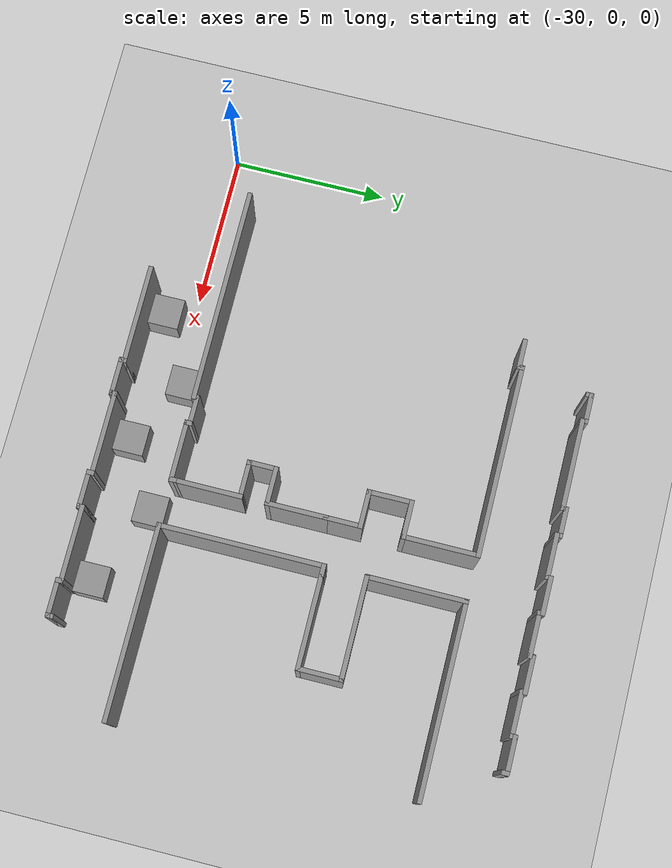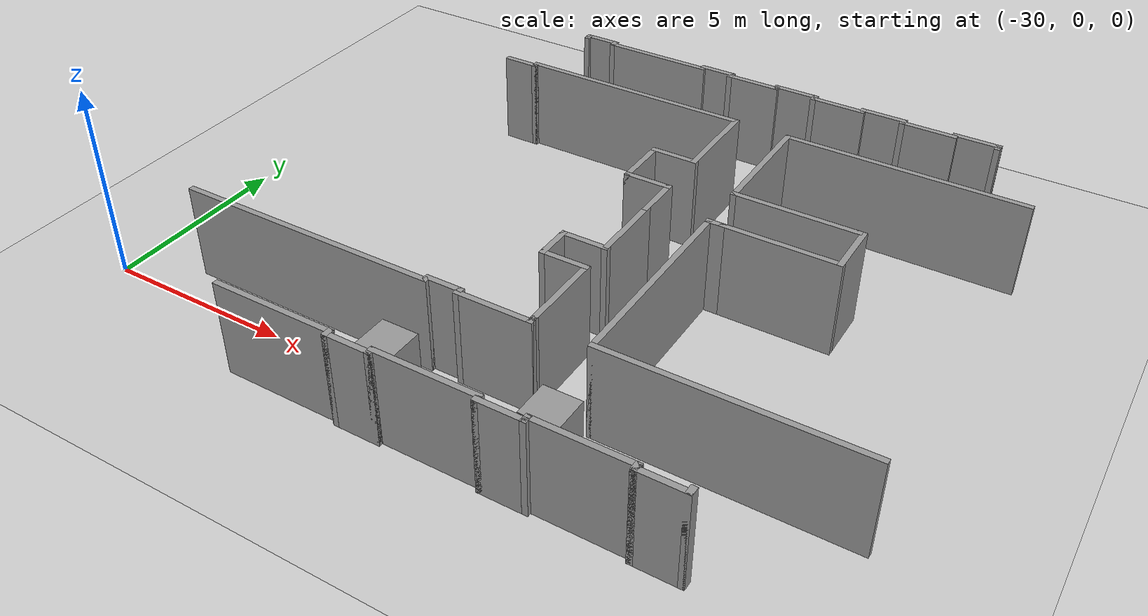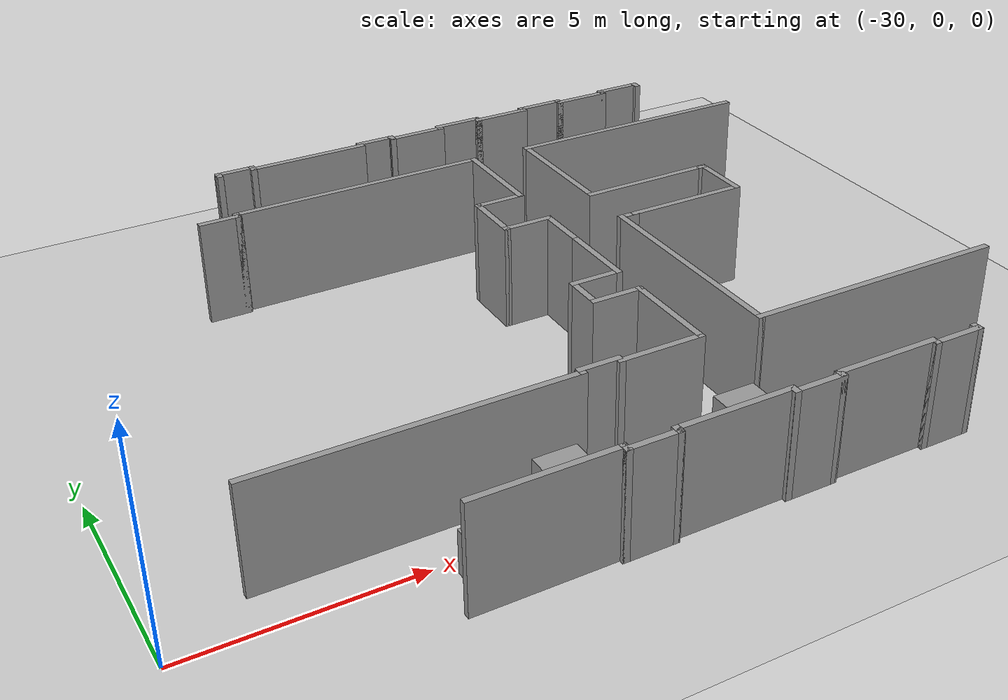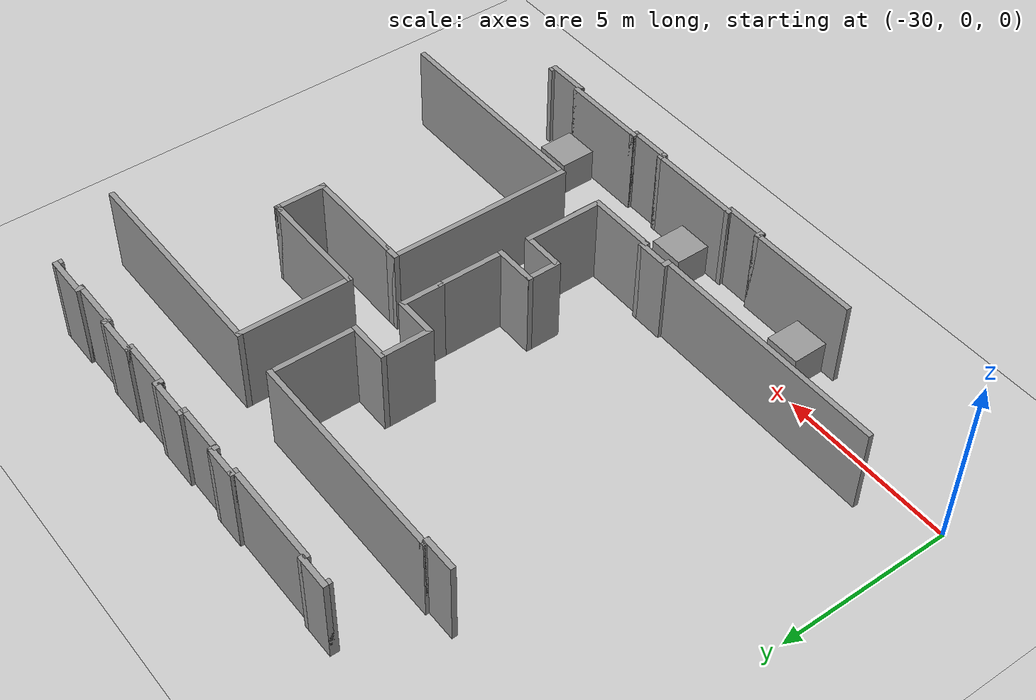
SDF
<sdf version="1.6">
 <world name="default">
  <model name="ground_plane">
   <static>1</static>
   <link name="link">
    <collision name="collision">
     <geometry><plane><normal>0 0 1</normal><size>100 100</size></plane></geometry>
     <surface><friction><ode><mu>100</mu><mu2>50</mu2></ode></friction></surface>
    </collision>
    <visual name="visual">
     <cast_shadows>0</cast_shadows>
     <geometry><plane><normal>0 0 1</normal><size>100 100</size></plane></geometry>
     <material>
      <script><uri>file://media/materials/scripts/gazebo.material</uri><name>Gazebo/Grey</name></script>
     </material>
    </visual>
   </link>
  </model>
  <model name="hallway">
   <pose>-18.4373 5.74333 0 0 -0 0</pose>
   <link name="Wall_100">
    <collision name="Wall_100_Collision">
     <geometry><box><size>3 0.15 2.5</size></box></geometry>
     <pose>0 0 1.25 0 -0 0</pose>
    </collision>
    <visual name="Wall_100_Visual">
     <pose>0 0 1.25 0 -0 0</pose>
     <geometry><box><size>3 0.15 2.5</size></box></geometry>
     <material>
      <script><uri>file://media/materials/scripts/gazebo.material</uri><name>Gazebo/Grey</name></script>
      <ambient>1 1 1 1</ambient>
     </material>
    </visual>
    <pose>-3.6 7.15 0 0 -0 3.14159</pose>
   </link>
   <link name="Wall_101">
    <collision name="Wall_101_Collision">
     <geometry><box><size>0.25 0.15 2.5</size></box></geometry>
     <pose>0 0 1.25 0 -0 0</pose>
    </collision>
    <visual name="Wall_101_Visual">
     <pose>0 0 1.25 0 -0 0</pose>
     <geometry><box><size>0.25 0.15 2.5</size></box></geometry>
     <material>
      <script><uri>file://media/materials/scripts/gazebo.material</uri><name>Gazebo/Grey</name></script>
      <ambient>1 1 1 1</ambient>
     </material>
    </visual>
    <pose>-5.025 7.2 0 0 -0 1.5708</pose>
   </link>
   <link name="Wall_102">
    <collision name="Wall_102_Collision">
     <geometry><box><size>1 0.15 2.5</size></box></geometry>
     <pose>0 0 1.25 0 -0 0</pose>
    </collision>
    <visual name="Wall_102_Visual">
     <pose>0 0 1.25 0 -0 0</pose>
     <geometry><box><size>1 0.15 2.5</size></box></geometry>
     <material>
      <script><uri>file://media/materials/scripts/gazebo.material</uri><name>Gazebo/Grey</name></script>
      <ambient>1 1 1 1</ambient>
     </material>
    </visual>
    <pose>-5.45 7.25 0 0 -0 3.14159</pose>
   </link>
   <link name="Wall_103">
    <collision name="Wall_103_Collision">
     <geometry><box><size>0.25 0.15 2.5</size></box></geometry>
     <pose>0 0 1.25 0 -0 0</pose>
    </collision>
    <visual name="Wall_103_Visual">
     <pose>0 0 1.25 0 -0 0</pose>
     <geometry><box><size>0.25 0.15 2.5</size></box></geometry>
     <material>
      <script><uri>file://media/materials/scripts/gazebo.material</uri><name>Gazebo/Grey</name></script>
      <ambient>1 1 1 1</ambient>
     </material>
    </visual>
    <pose>-5.875 7.2 0 0 0 -1.5708</pose>
   </link>
   <link name="Wall_137">
    <collision name="Wall_137_Collision">
     <geometry><box><size>1 0.15 2.5</size></box></geometry>
     <pose>0 0 1.25 0 -0 0</pose>
    </collision>
    <visual name="Wall_137_Visual">
     <pose>0 0 1.25 0 -0 0</pose>
     <geometry><box><size>1 0.15 2.5</size></box></geometry>
     <material>
      <script><uri>file://media/materials/scripts/gazebo.material</uri><name>Gazebo/Grey</name></script>
      <ambient>1 1 1 1</ambient>
     </material>
    </visual>
    <pose>-6.65 4.86522 0 0 -0 0</pose>
   </link>
   <link name="Wall_138">
    <collision name="Wall_138_Collision">
     <geometry><box><size>0.25 0.15 2.5</size></box></geometry>
     <pose>0 0 1.25 0 -0 0</pose>
    </collision>
    <visual name="Wall_138_Visual">
     <pose>0 0 1.25 0 -0 0</pose>
     <geometry><box><size>0.25 0.15 2.5</size></box></geometry>
     <material>
      <script><uri>file://media/materials/scripts/gazebo.material</uri><name>Gazebo/Grey</name></script>
      <ambient>1 1 1 1</ambient>
     </material>
    </visual>
    <pose>-6.225 4.91522 0 0 -0 1.5708</pose>
   </link>
   <link name="Wall_139">
    <collision name="Wall_139_Collision">
     <geometry><box><size>6.25 0.15 2.5</size></box></geometry>
     <pose>0 0 1.25 0 -0 0</pose>
    </collision>
    <visual name="Wall_139_Visual">
     <pose>0 0 1.25 0 -0 0</pose>
     <geometry><box><size>6.25 0.15 2.5</size></box></geometry>
     <material>
      <script><uri>file://media/materials/scripts/gazebo.material</uri><name>Gazebo/Grey</name></script>
      <ambient>1 1 1 1</ambient>
     </material>
    </visual>
    <pose>-3.175 4.96522 0 0 -0 0</pose>
   </link>
   <link name="Wall_140">
    <collision name="Wall_140_Collision">
     <geometry><box><size>2.5 0.15 2.5</size></box></geometry>
     <pose>0 0 1.25 0 -0 0</pose>
    </collision>
    <visual name="Wall_140_Visual">
     <pose>0 0 1.25 0 -0 0</pose>
     <geometry><box><size>2.5 0.15 2.5</size></box></geometry>
     <material>
      <script><uri>file://media/materials/scripts/gazebo.material</uri><name>Gazebo/Grey</name></script>
      <ambient>1 1 1 1</ambient>
     </material>
    </visual>
    <pose>-0.125 3.79022 0 0 0 -1.5708</pose>
   </link>
   <link name="Wall_141">
    <collision name="Wall_141_Collision">
     <geometry><box><size>1.25 0.15 2.5</size></box></geometry>
     <pose>0 0 1.25 0 -0 0</pose>
    </collision>
    <visual name="Wall_141_Visual">
     <pose>0 0 1.25 0 -0 0</pose>
     <geometry><box><size>1.25 0.15 2.5</size></box></geometry>
     <material>
      <script><uri>file://media/materials/scripts/gazebo.material</uri><name>Gazebo/Grey</name></script>
      <ambient>1 1 1 1</ambient>
     </material>
    </visual>
    <pose>-0.675 2.61522 0 0 -0 3.14159</pose>
   </link>
   <link name="Wall_142">
    <collision name="Wall_142_Collision">
     <geometry><box><size>1.5 0.15 2.5</size></box></geometry>
     <pose>0 0 1.25 0 -0 0</pose>
    </collision>
    <visual name="Wall_142_Visual">
     <pose>0 0 1.25 0 -0 0</pose>
     <geometry><box><size>1.5 0.15 2.5</size></box></geometry>
     <material>
      <script><uri>file://media/materials/scripts/gazebo.material</uri><name>Gazebo/Grey</name></script>
      <ambient>1 1 1 1</ambient>
     </material>
    </visual>
    <pose>-1.225 1.94022 0 0 0 -1.5708</pose>
   </link>
   <link name="Wall_143">
    <collision name="Wall_143_Collision">
     <geometry><box><size>1.25 0.15 2.5</size></box></geometry>
     <pose>0 0 1.25 0 -0 0</pose>
    </collision>
    <visual name="Wall_143_Visual">
     <pose>0 0 1.25 0 -0 0</pose>
     <geometry><box><size>1.25 0.15 2.5</size></box></geometry>
     <material>
      <script><uri>file://media/materials/scripts/gazebo.material</uri><name>Gazebo/Grey</name></script>
      <ambient>1 1 1 1</ambient>
     </material>
    </visual>
    <pose>-0.675 1.26522 0 0 -0 0</pose>
   </link>
   <link name="Wall_144">
    <collision name="Wall_144_Collision">
     <geometry><box><size>1.25 0.15 2.5</size></box></geometry>
     <pose>0 0 1.25 0 -0 0</pose>
    </collision>
    <visual name="Wall_144_Visual">
     <pose>0 0 1.25 0 -0 0</pose>
     <geometry><box><size>1.25 0.15 2.5</size></box></geometry>
     <material>
      <script><uri>file://media/materials/scripts/gazebo.material</uri><name>Gazebo/Grey</name></script>
      <ambient>1 1 1 1</ambient>
     </material>
    </visual>
    <pose>-0.125 0.715217 0 0 0 -1.5708</pose>
   </link>
   <link name="Wall_146">
    <collision name="Wall_146_Collision">
     <geometry><box><size>2 0.15 2.5</size></box></geometry>
     <pose>0 0 1.25 0 -0 0</pose>
    </collision>
    <visual name="Wall_146_Visual">
     <pose>0 0 1.25 0 -0 0</pose>
     <geometry><box><size>2 0.15 2.5</size></box></geometry>
     <material>
      <script><uri>file://media/materials/scripts/gazebo.material</uri><name>Gazebo/Grey</name></script>
      <ambient>1 1 1 1</ambient>
     </material>
    </visual>
    <pose>-0.125 -0.759783 0 0 0 -1.5708</pose>
   </link>
   <link name="Wall_147">
    <collision name="Wall_147_Collision">
     <geometry><box><size>1.25 0.15 2.5</size></box></geometry>
     <pose>0 0 1.25 0 -0 0</pose>
    </collision>
    <visual name="Wall_147_Visual">
     <pose>0 0 1.25 0 -0 0</pose>
     <geometry><box><size>1.25 0.15 2.5</size></box></geometry>
     <material>
      <script><uri>file://media/materials/scripts/gazebo.material</uri><name>Gazebo/Grey</name></script>
      <ambient>1 1 1 1</ambient>
     </material>
    </visual>
    <pose>-0.675 -1.68478 0 0 -0 3.14159</pose>
   </link>
   <link name="Wall_148">
    <collision name="Wall_148_Collision">
     <geometry><box><size>1 0.15 2.5</size></box></geometry>
     <pose>0 0 1.25 0 -0 0</pose>
    </collision>
    <visual name="Wall_148_Visual">
     <pose>0 0 1.25 0 -0 0</pose>
     <geometry><box><size>1 0.15 2.5</size></box></geometry>
     <material>
      <script><uri>file://media/materials/scripts/gazebo.material</uri><name>Gazebo/Grey</name></script>
      <ambient>1 1 1 1</ambient>
     </material>
    </visual>
    <pose>-1.225 -2.10978 0 0 0 -1.5708</pose>
   </link>
   <link name="Wall_156">
    <collision name="Wall_156_Collision">
     <geometry><box><size>1.25 0.15 2.5</size></box></geometry>
     <pose>0 0 1.25 0 -0 0</pose>
    </collision>
    <visual name="Wall_156_Visual">
     <pose>0 0 1.25 0 -0 0</pose>
     <geometry><box><size>1.25 0.15 2.5</size></box></geometry>
     <material>
      <script><uri>file://media/materials/scripts/gazebo.material</uri><name>Gazebo/Grey</name></script>
      <ambient>1 1 1 1</ambient>
     </material>
    </visual>
    <pose>-0.675 -2.53478 0 0 -0 0</pose>
   </link>
   <link name="Wall_157">
    <collision name="Wall_157_Collision">
     <geometry><box><size>2.25 0.15 2.5</size></box></geometry>
     <pose>0 0 1.25 0 -0 0</pose>
    </collision>
    <visual name="Wall_157_Visual">
     <pose>0 0 1.25 0 -0 0</pose>
     <geometry><box><size>2.25 0.15 2.5</size></box></geometry>
     <material>
      <script><uri>file://media/materials/scripts/gazebo.material</uri><name>Gazebo/Grey</name></script>
      <ambient>1 1 1 1</ambient>
     </material>
    </visual>
    <pose>-0.125 -3.58478 0 0 0 -1.5708</pose>
   </link>
   <link name="Wall_158">
    <collision name="Wall_158_Collision">
     <geometry><box><size>0.25 0.15 2.5</size></box></geometry>
     <pose>0 0 1.25 0 -0 0</pose>
    </collision>
    <visual name="Wall_158_Visual">
     <pose>0 0 1.25 0 -0 0</pose>
     <geometry><box><size>0.25 0.15 2.5</size></box></geometry>
     <material>
      <script><uri>file://media/materials/scripts/gazebo.material</uri><name>Gazebo/Grey</name></script>
      <ambient>1 1 1 1</ambient>
     </material>
    </visual>
    <pose>-0.125 -4.68478 0 0 0 -1.5708</pose>
   </link>
   <link name="Wall_159">
    <collision name="Wall_159_Collision">
     <geometry><box><size>2 0.15 2.5</size></box></geometry>
     <pose>0 0 1.25 0 -0 0</pose>
    </collision>
    <visual name="Wall_159_Visual">
     <pose>0 0 1.25 0 -0 0</pose>
     <geometry><box><size>2 0.15 2.5</size></box></geometry>
     <material>
      <script><uri>file://media/materials/scripts/gazebo.material</uri><name>Gazebo/Grey</name></script>
      <ambient>1 1 1 1</ambient>
     </material>
    </visual>
    <pose>-1.05 -4.73478 0 0 -0 3.14159</pose>
   </link>
   <link name="Wall_160">
    <collision name="Wall_160_Collision">
     <geometry><box><size>0.25 0.15 2.5</size></box></geometry>
     <pose>0 0 1.25 0 -0 0</pose>
    </collision>
    <visual name="Wall_160_Visual">
     <pose>0 0 1.25 0 -0 0</pose>
     <geometry><box><size>0.25 0.15 2.5</size></box></geometry>
     <material>
      <script><uri>file://media/materials/scripts/gazebo.material</uri><name>Gazebo/Grey</name></script>
      <ambient>1 1 1 1</ambient>
     </material>
    </visual>
    <pose>-1.975 -4.68478 0 0 -0 1.5708</pose>
   </link>
   <link name="Wall_161">
    <collision name="Wall_161_Collision">
     <geometry><box><size>1 0.15 2.5</size></box></geometry>
     <pose>0 0 1.25 0 -0 0</pose>
    </collision>
    <visual name="Wall_161_Visual">
     <pose>0 0 1.25 0 -0 0</pose>
     <geometry><box><size>1 0.15 2.5</size></box></geometry>
     <material>
      <script><uri>file://media/materials/scripts/gazebo.material</uri><name>Gazebo/Grey</name></script>
      <ambient>1 1 1 1</ambient>
     </material>
    </visual>
    <pose>-2.4 -4.63478 0 0 -0 3.14159</pose>
   </link>
   <link name="Wall_162">
    <collision name="Wall_162_Collision">
     <geometry><box><size>0.25 0.15 2.5</size></box></geometry>
     <pose>0 0 1.25 0 -0 0</pose>
    </collision>
    <visual name="Wall_162_Visual">
     <pose>0 0 1.25 0 -0 0</pose>
     <geometry><box><size>0.25 0.15 2.5</size></box></geometry>
     <material>
      <script><uri>file://media/materials/scripts/gazebo.material</uri><name>Gazebo/Grey</name></script>
      <ambient>1 1 1 1</ambient>
     </material>
    </visual>
    <pose>-2.825 -4.68478 0 0 0 -1.5708</pose>
   </link>
   <link name="Wall_163">
    <collision name="Wall_163_Collision">
     <geometry><box><size>7 0.15 2.5</size></box></geometry>
     <pose>0 0 1.25 0 -0 0</pose>
    </collision>
    <visual name="Wall_163_Visual">
     <pose>0 0 1.25 0 -0 0</pose>
     <geometry><box><size>7 0.15 2.5</size></box></geometry>
     <material>
      <script><uri>file://media/materials/scripts/gazebo.material</uri><name>Gazebo/Grey</name></script>
      <ambient>1 1 1 1</ambient>
     </material>
    </visual>
    <pose>-6.25 -4.73478 0 0 -0 3.14159</pose>
   </link>
   <link name="Wall_184">
    <collision name="Wall_184_Collision">
     <geometry><box><size>6.25 0.15 2.5</size></box></geometry>
     <pose>0 0 1.25 0 -0 0</pose>
    </collision>
    <visual name="Wall_184_Visual">
     <pose>0 0 1.25 0 -0 0</pose>
     <geometry><box><size>6.25 0.15 2.5</size></box></geometry>
     <material>
      <script><uri>file://media/materials/scripts/gazebo.material</uri><name>Gazebo/Grey</name></script>
      <ambient>1 1 1 1</ambient>
     </material>
    </visual>
    <pose>4.38892 -4.72399 0 0 -0 0</pose>
   </link>
   <link name="Wall_195">
    <collision name="Wall_195_Collision">
     <geometry><box><size>6.25 0.15 2.5</size></box></geometry>
     <pose>0 0 1.25 0 -0 0</pose>
    </collision>
    <visual name="Wall_195_Visual">
     <pose>0 0 1.25 0 -0 0</pose>
     <geometry><box><size>6.25 0.15 2.5</size></box></geometry>
     <material>
      <script><uri>file://media/materials/scripts/gazebo.material</uri><name>Gazebo/Grey</name></script>
      <ambient>1 1 1 1</ambient>
     </material>
    </visual>
    <pose>4.38892 4.92601 0 0 -0 3.14159</pose>
   </link>
   <link name="Wall_196">
    <collision name="Wall_196_Collision">
     <geometry><box><size>3.25 0.15 2.5</size></box></geometry>
     <pose>0 0 1.25 0 -0 0</pose>
    </collision>
    <visual name="Wall_196_Visual">
     <pose>0 0 1.25 0 -0 0</pose>
     <geometry><box><size>3.25 0.15 2.5</size></box></geometry>
     <material>
      <script><uri>file://media/materials/scripts/gazebo.material</uri><name>Gazebo/Grey</name></script>
      <ambient>1 1 1 1</ambient>
     </material>
    </visual>
    <pose>1.33892 3.37601 0 0 0 -1.5708</pose>
   </link>
   <link name="Wall_197">
    <collision name="Wall_197_Collision">
     <geometry><box><size>3.25 0.15 2.5</size></box></geometry>
     <pose>0 0 1.25 0 -0 0</pose>
    </collision>
    <visual name="Wall_197_Visual">
     <pose>0 0 1.25 0 -0 0</pose>
     <geometry><box><size>3.25 0.15 2.5</size></box></geometry>
     <material>
      <script><uri>file://media/materials/scripts/gazebo.material</uri><name>Gazebo/Grey</name></script>
      <ambient>1 1 1 1</ambient>
     </material>
    </visual>
    <pose>2.88892 1.82601 0 0 -0 0</pose>
   </link>
   <link name="Wall_198">
    <collision name="Wall_198_Collision">
     <geometry><box><size>0.25 0.15 2.5</size></box></geometry>
     <pose>0 0 1.25 0 -0 0</pose>
    </collision>
    <visual name="Wall_198_Visual">
     <pose>0 0 1.25 0 -0 0</pose>
     <geometry><box><size>0.25 0.15 2.5</size></box></geometry>
     <material>
      <script><uri>file://media/materials/scripts/gazebo.material</uri><name>Gazebo/Grey</name></script>
      <ambient>1 1 1 1</ambient>
     </material>
    </visual>
    <pose>4.48892 1.82601 0 0 -0 0</pose>
   </link>
   <link name="Wall_199">
    <collision name="Wall_199_Collision">
     <geometry><box><size>1.5 0.15 2.5</size></box></geometry>
     <pose>0 0 1.25 0 -0 0</pose>
    </collision>
    <visual name="Wall_199_Visual">
     <pose>0 0 1.25 0 -0 0</pose>
     <geometry><box><size>1.5 0.15 2.5</size></box></geometry>
     <material>
      <script><uri>file://media/materials/scripts/gazebo.material</uri><name>Gazebo/Grey</name></script>
      <ambient>1 1 1 1</ambient>
     </material>
    </visual>
    <pose>4.53892 1.15101 0 0 0 -1.5708</pose>
   </link>
   <link name="Wall_20">
    <collision name="Wall_20_Collision">
     <geometry><box><size>3.25 0.15 2.5</size></box></geometry>
     <pose>0 0 1.25 0 -0 0</pose>
    </collision>
    <visual name="Wall_20_Visual">
     <pose>0 0 1.25 0 -0 0</pose>
     <geometry><box><size>3.25 0.15 2.5</size></box></geometry>
     <material>
      <script><uri>file://media/materials/scripts/gazebo.material</uri><name>Gazebo/Grey</name></script>
      <ambient>1 1 1 1</ambient>
     </material>
    </visual>
    <pose>-4.975 -7.15 0 0 -0 0</pose>
   </link>
   <link name="Wall_200">
    <collision name="Wall_200_Collision">
     <geometry><box><size>3 0.15 2.5</size></box></geometry>
     <pose>0 0 1.25 0 -0 0</pose>
    </collision>
    <visual name="Wall_200_Visual">
     <pose>0 0 1.25 0 -0 0</pose>
     <geometry><box><size>3 0.15 2.5</size></box></geometry>
     <material>
      <script><uri>file://media/materials/scripts/gazebo.material</uri><name>Gazebo/Grey</name></script>
      <ambient>1 1 1 1</ambient>
     </material>
    </visual>
    <pose>3.11392 0.476009 0 0 -0 3.14159</pose>
   </link>
   <link name="Wall_201">
    <collision name="Wall_201_Collision">
     <geometry><box><size>0.5 0.15 2.5</size></box></geometry>
     <pose>0 0 1.25 0 -0 0</pose>
    </collision>
    <visual name="Wall_201_Visual">
     <pose>0 0 1.25 0 -0 0</pose>
     <geometry><box><size>0.5 0.15 2.5</size></box></geometry>
     <material>
      <script><uri>file://media/materials/scripts/gazebo.material</uri><name>Gazebo/Grey</name></script>
      <ambient>1 1 1 1</ambient>
     </material>
    </visual>
    <pose>1.51392 0.476009 0 0 -0 3.14159</pose>
   </link>
   <link name="Wall_202">
    <collision name="Wall_202_Collision">
     <geometry><box><size>5.35 0.15 2.5</size></box></geometry>
     <pose>0 0 1.25 0 -0 0</pose>
    </collision>
    <visual name="Wall_202_Visual">
     <pose>0 0 1.25 0 -0 0</pose>
     <geometry><box><size>5.35 0.15 2.5</size></box></geometry>
     <material>
      <script><uri>file://media/materials/scripts/gazebo.material</uri><name>Gazebo/Grey</name></script>
      <ambient>1 1 1 1</ambient>
     </material>
    </visual>
    <pose>1.33892 -2.12399 0 0 0 -1.5708</pose>
   </link>
   <link name="Wall_21">
    <collision name="Wall_21_Collision">
     <geometry><box><size>0.25 0.15 2.5</size></box></geometry>
     <pose>0 0 1.25 0 -0 0</pose>
    </collision>
    <visual name="Wall_21_Visual">
     <pose>0 0 1.25 0 -0 0</pose>
     <geometry><box><size>0.25 0.15 2.5</size></box></geometry>
     <material>
      <script><uri>file://media/materials/scripts/gazebo.material</uri><name>Gazebo/Grey</name></script>
      <ambient>1 1 1 1</ambient>
     </material>
    </visual>
    <pose>-3.425 -7.2 0 0 0 -1.5708</pose>
   </link>
   <link name="Wall_22">
    <collision name="Wall_22_Collision">
     <geometry><box><size>1.25 0.15 2.5</size></box></geometry>
     <pose>0 0 1.25 0 -0 0</pose>
    </collision>
    <visual name="Wall_22_Visual">
     <pose>0 0 1.25 0 -0 0</pose>
     <geometry><box><size>1.25 0.15 2.5</size></box></geometry>
     <material>
      <script><uri>file://media/materials/scripts/gazebo.material</uri><name>Gazebo/Grey</name></script>
      <ambient>1 1 1 1</ambient>
     </material>
    </visual>
    <pose>-2.875 -7.25 0 0 -0 0</pose>
   </link>
   <link name="Wall_23">
    <collision name="Wall_23_Collision">
     <geometry><box><size>0.25 0.15 2.5</size></box></geometry>
     <pose>0 0 1.25 0 -0 0</pose>
    </collision>
    <visual name="Wall_23_Visual">
     <pose>0 0 1.25 0 -0 0</pose>
     <geometry><box><size>0.25 0.15 2.5</size></box></geometry>
     <material>
      <script><uri>file://media/materials/scripts/gazebo.material</uri><name>Gazebo/Grey</name></script>
      <ambient>1 1 1 1</ambient>
     </material>
    </visual>
    <pose>-2.325 -7.2 0 0 -0 1.5708</pose>
   </link>
   <link name="Wall_24">
    <collision name="Wall_24_Collision">
     <geometry><box><size>2.75 0.15 2.5</size></box></geometry>
     <pose>0 0 1.25 0 -0 0</pose>
    </collision>
    <visual name="Wall_24_Visual">
     <pose>0 0 1.25 0 -0 0</pose>
     <geometry><box><size>2.75 0.15 2.5</size></box></geometry>
     <material>
      <script><uri>file://media/materials/scripts/gazebo.material</uri><name>Gazebo/Grey</name></script>
      <ambient>1 1 1 1</ambient>
     </material>
    </visual>
    <pose>-1.025 -7.15 0 0 -0 0</pose>
   </link>
   <link name="Wall_25">
    <collision name="Wall_25_Collision">
     <geometry><box><size>0.25 0.15 2.5</size></box></geometry>
     <pose>0 0 1.25 0 -0 0</pose>
    </collision>
    <visual name="Wall_25_Visual">
     <pose>0 0 1.25 0 -0 0</pose>
     <geometry><box><size>0.25 0.15 2.5</size></box></geometry>
     <material>
      <script><uri>file://media/materials/scripts/gazebo.material</uri><name>Gazebo/Grey</name></script>
      <ambient>1 1 1 1</ambient>
     </material>
    </visual>
    <pose>0.275 -7.2 0 0 0 -1.5708</pose>
   </link>
   <link name="Wall_26">
    <collision name="Wall_26_Collision">
     <geometry><box><size>1.25 0.15 2.5</size></box></geometry>
     <pose>0 0 1.25 0 -0 0</pose>
    </collision>
    <visual name="Wall_26_Visual">
     <pose>0 0 1.25 0 -0 0</pose>
     <geometry><box><size>1.25 0.15 2.5</size></box></geometry>
     <material>
      <script><uri>file://media/materials/scripts/gazebo.material</uri><name>Gazebo/Grey</name></script>
      <ambient>1 1 1 1</ambient>
     </material>
    </visual>
    <pose>0.825 -7.25 0 0 -0 0</pose>
   </link>
   <link name="Wall_27">
    <collision name="Wall_27_Collision">
     <geometry><box><size>0.25 0.15 2.5</size></box></geometry>
     <pose>0 0 1.25 0 -0 0</pose>
    </collision>
    <visual name="Wall_27_Visual">
     <pose>0 0 1.25 0 -0 0</pose>
     <geometry><box><size>0.25 0.15 2.5</size></box></geometry>
     <material>
      <script><uri>file://media/materials/scripts/gazebo.material</uri><name>Gazebo/Grey</name></script>
      <ambient>1 1 1 1</ambient>
     </material>
    </visual>
    <pose>1.375 -7.2 0 0 -0 1.5708</pose>
   </link>
   <link name="Wall_28">
    <collision name="Wall_28_Collision">
     <geometry><box><size>2.5 0.15 2.5</size></box></geometry>
     <pose>0 0 1.25 0 -0 0</pose>
    </collision>
    <visual name="Wall_28_Visual">
     <pose>0 0 1.25 0 -0 0</pose>
     <geometry><box><size>2.5 0.15 2.5</size></box></geometry>
     <material>
      <script><uri>file://media/materials/scripts/gazebo.material</uri><name>Gazebo/Grey</name></script>
      <ambient>1 1 1 1</ambient>
     </material>
    </visual>
    <pose>2.55 -7.15 0 0 -0 0</pose>
   </link>
   <link name="Wall_29">
    <collision name="Wall_29_Collision">
     <geometry><box><size>0.25 0.15 2.5</size></box></geometry>
     <pose>0 0 1.25 0 -0 0</pose>
    </collision>
    <visual name="Wall_29_Visual">
     <pose>0 0 1.25 0 -0 0</pose>
     <geometry><box><size>0.25 0.15 2.5</size></box></geometry>
     <material>
      <script><uri>file://media/materials/scripts/gazebo.material</uri><name>Gazebo/Grey</name></script>
      <ambient>1 1 1 1</ambient>
     </material>
    </visual>
    <pose>3.725 -7.2 0 0 0 -1.5708</pose>
   </link>
   <link name="Wall_30">
    <collision name="Wall_30_Collision">
     <geometry><box><size>1.25 0.15 2.5</size></box></geometry>
     <pose>0 0 1.25 0 -0 0</pose>
    </collision>
    <visual name="Wall_30_Visual">
     <pose>0 0 1.25 0 -0 0</pose>
     <geometry><box><size>1.25 0.15 2.5</size></box></geometry>
     <material>
      <script><uri>file://media/materials/scripts/gazebo.material</uri><name>Gazebo/Grey</name></script>
      <ambient>1 1 1 1</ambient>
     </material>
    </visual>
    <pose>4.275 -7.25 0 0 -0 0</pose>
   </link>
   <link name="Wall_31">
    <collision name="Wall_31_Collision">
     <geometry><box><size>0.25 0.15 2.5</size></box></geometry>
     <pose>0 0 1.25 0 -0 0</pose>
    </collision>
    <visual name="Wall_31_Visual">
     <pose>0 0 1.25 0 -0 0</pose>
     <geometry><box><size>0.25 0.15 2.5</size></box></geometry>
     <material>
      <script><uri>file://media/materials/scripts/gazebo.material</uri><name>Gazebo/Grey</name></script>
      <ambient>1 1 1 1</ambient>
     </material>
    </visual>
    <pose>4.825 -7.2 0 0 -0 1.5708</pose>
   </link>
   <link name="Wall_85">
    <collision name="Wall_85_Collision">
     <geometry><box><size>0.25 0.15 2.5</size></box></geometry>
     <pose>0 0 1.25 0 -0 0</pose>
    </collision>
    <visual name="Wall_85_Visual">
     <pose>0 0 1.25 0 -0 0</pose>
     <geometry><box><size>0.25 0.15 2.5</size></box></geometry>
     <material>
      <script><uri>file://media/materials/scripts/gazebo.material</uri><name>Gazebo/Grey</name></script>
      <ambient>1 1 1 1</ambient>
     </material>
    </visual>
    <pose>6.025 7.2 0 0 -0 1.5708</pose>
   </link>
   <link name="Wall_86">
    <collision name="Wall_86_Collision">
     <geometry><box><size>1.25 0.15 2.5</size></box></geometry>
     <pose>0 0 1.25 0 -0 0</pose>
    </collision>
    <visual name="Wall_86_Visual">
     <pose>0 0 1.25 0 -0 0</pose>
     <geometry><box><size>1.25 0.15 2.5</size></box></geometry>
     <material>
      <script><uri>file://media/materials/scripts/gazebo.material</uri><name>Gazebo/Grey</name></script>
      <ambient>1 1 1 1</ambient>
     </material>
    </visual>
    <pose>5.475 7.25 0 0 -0 3.14159</pose>
   </link>
   <link name="Wall_87">
    <collision name="Wall_87_Collision">
     <geometry><box><size>0.25 0.15 2.5</size></box></geometry>
     <pose>0 0 1.25 0 -0 0</pose>
    </collision>
    <visual name="Wall_87_Visual">
     <pose>0 0 1.25 0 -0 0</pose>
     <geometry><box><size>0.25 0.15 2.5</size></box></geometry>
     <material>
      <script><uri>file://media/materials/scripts/gazebo.material</uri><name>Gazebo/Grey</name></script>
      <ambient>1 1 1 1</ambient>
     </material>
    </visual>
    <pose>4.925 7.2 0 0 0 -1.5708</pose>
   </link>
   <link name="Wall_88">
    <collision name="Wall_88_Collision">
     <geometry><box><size>1.5 0.15 2.5</size></box></geometry>
     <pose>0 0 1.25 0 -0 0</pose>
    </collision>
    <visual name="Wall_88_Visual">
     <pose>0 0 1.25 0 -0 0</pose>
     <geometry><box><size>1.5 0.15 2.5</size></box></geometry>
     <material>
      <script><uri>file://media/materials/scripts/gazebo.material</uri><name>Gazebo/Grey</name></script>
      <ambient>1 1 1 1</ambient>
     </material>
    </visual>
    <pose>4.25 7.15 0 0 -0 3.14159</pose>
   </link>
   <link name="Wall_89">
    <collision name="Wall_89_Collision">
     <geometry><box><size>0.25 0.15 2.5</size></box></geometry>
     <pose>0 0 1.25 0 -0 0</pose>
    </collision>
    <visual name="Wall_89_Visual">
     <pose>0 0 1.25 0 -0 0</pose>
     <geometry><box><size>0.25 0.15 2.5</size></box></geometry>
     <material>
      <script><uri>file://media/materials/scripts/gazebo.material</uri><name>Gazebo/Grey</name></script>
      <ambient>1 1 1 1</ambient>
     </material>
    </visual>
    <pose>3.575 7.2 0 0 -0 1.5708</pose>
   </link>
   <link name="Wall_90">
    <collision name="Wall_90_Collision">
     <geometry><box><size>1.25 0.15 2.5</size></box></geometry>
     <pose>0 0 1.25 0 -0 0</pose>
    </collision>
    <visual name="Wall_90_Visual">
     <pose>0 0 1.25 0 -0 0</pose>
     <geometry><box><size>1.25 0.15 2.5</size></box></geometry>
     <material>
      <script><uri>file://media/materials/scripts/gazebo.material</uri><name>Gazebo/Grey</name></script>
      <ambient>1 1 1 1</ambient>
     </material>
    </visual>
    <pose>3.025 7.25 0 0 -0 3.14159</pose>
   </link>
   <link name="Wall_91">
    <collision name="Wall_91_Collision">
     <geometry><box><size>0.25 0.15 2.5</size></box></geometry>
     <pose>0 0 1.25 0 -0 0</pose>
    </collision>
    <visual name="Wall_91_Visual">
     <pose>0 0 1.25 0 -0 0</pose>
     <geometry><box><size>0.25 0.15 2.5</size></box></geometry>
     <material>
      <script><uri>file://media/materials/scripts/gazebo.material</uri><name>Gazebo/Grey</name></script>
      <ambient>1 1 1 1</ambient>
     </material>
    </visual>
    <pose>2.475 7.2 0 0 0 -1.5708</pose>
   </link>
   <link name="Wall_92">
    <collision name="Wall_92_Collision">
     <geometry><box><size>1.5 0.15 2.5</size></box></geometry>
     <pose>0 0 1.25 0 -0 0</pose>
    </collision>
    <visual name="Wall_92_Visual">
     <pose>0 0 1.25 0 -0 0</pose>
     <geometry><box><size>1.5 0.15 2.5</size></box></geometry>
     <material>
      <script><uri>file://media/materials/scripts/gazebo.material</uri><name>Gazebo/Grey</name></script>
      <ambient>1 1 1 1</ambient>
     </material>
    </visual>
    <pose>1.8 7.15 0 0 -0 3.14159</pose>
   </link>
   <link name="Wall_93">
    <collision name="Wall_93_Collision">
     <geometry><box><size>0.25 0.15 2.5</size></box></geometry>
     <pose>0 0 1.25 0 -0 0</pose>
    </collision>
    <visual name="Wall_93_Visual">
     <pose>0 0 1.25 0 -0 0</pose>
     <geometry><box><size>0.25 0.15 2.5</size></box></geometry>
     <material>
      <script><uri>file://media/materials/scripts/gazebo.material</uri><name>Gazebo/Grey</name></script>
      <ambient>1 1 1 1</ambient>
     </material>
    </visual>
    <pose>1.125 7.2 0 0 -0 1.5708</pose>
   </link>
   <link name="Wall_94">
    <collision name="Wall_94_Collision">
     <geometry><box><size>1.25 0.15 2.5</size></box></geometry>
     <pose>0 0 1.25 0 -0 0</pose>
    </collision>
    <visual name="Wall_94_Visual">
     <pose>0 0 1.25 0 -0 0</pose>
     <geometry><box><size>1.25 0.15 2.5</size></box></geometry>
     <material>
      <script><uri>file://media/materials/scripts/gazebo.material</uri><name>Gazebo/Grey</name></script>
      <ambient>1 1 1 1</ambient>
     </material>
    </visual>
    <pose>0.575 7.25 0 0 -0 3.14159</pose>
   </link>
   <link name="Wall_95">
    <collision name="Wall_95_Collision">
     <geometry><box><size>0.25 0.15 2.5</size></box></geometry>
     <pose>0 0 1.25 0 -0 0</pose>
    </collision>
    <visual name="Wall_95_Visual">
     <pose>0 0 1.25 0 -0 0</pose>
     <geometry><box><size>0.25 0.15 2.5</size></box></geometry>
     <material>
      <script><uri>file://media/materials/scripts/gazebo.material</uri><name>Gazebo/Grey</name></script>
      <ambient>1 1 1 1</ambient>
     </material>
    </visual>
    <pose>0.025 7.2 0 0 0 -1.5708</pose>
   </link>
   <link name="Wall_96">
    <collision name="Wall_96_Collision">
     <geometry><box><size>1.5 0.15 2.5</size></box></geometry>
     <pose>0 0 1.25 0 -0 0</pose>
    </collision>
    <visual name="Wall_96_Visual">
     <pose>0 0 1.25 0 -0 0</pose>
     <geometry><box><size>1.5 0.15 2.5</size></box></geometry>
     <material>
      <script><uri>file://media/materials/scripts/gazebo.material</uri><name>Gazebo/Grey</name></script>
      <ambient>1 1 1 1</ambient>
     </material>
    </visual>
    <pose>-0.649999 7.15 0 0 -0 3.14159</pose>
   </link>
   <link name="Wall_97">
    <collision name="Wall_97_Collision">
     <geometry><box><size>0.25 0.15 2.5</size></box></geometry>
     <pose>0 0 1.25 0 -0 0</pose>
    </collision>
    <visual name="Wall_97_Visual">
     <pose>0 0 1.25 0 -0 0</pose>
     <geometry><box><size>0.25 0.15 2.5</size></box></geometry>
     <material>
      <script><uri>file://media/materials/scripts/gazebo.material</uri><name>Gazebo/Grey</name></script>
      <ambient>1 1 1 1</ambient>
     </material>
    </visual>
    <pose>-1.325 7.2 0 0 -0 1.5708</pose>
   </link>
   <link name="Wall_98">
    <collision name="Wall_98_Collision">
     <geometry><box><size>1 0.15 2.5</size></box></geometry>
     <pose>0 0 1.25 0 -0 0</pose>
    </collision>
    <visual name="Wall_98_Visual">
     <pose>0 0 1.25 0 -0 0</pose>
     <geometry><box><size>1 0.15 2.5</size></box></geometry>
     <material>
      <script><uri>file://media/materials/scripts/gazebo.material</uri><name>Gazebo/Grey</name></script>
      <ambient>1 1 1 1</ambient>
     </material>
    </visual>
    <pose>-1.75 7.25 0 0 -0 3.14159</pose>
   </link>
   <link name="Wall_99">
    <collision name="Wall_99_Collision">
     <geometry><box><size>0.25 0.15 2.5</size></box></geometry>
     <pose>0 0 1.25 0 -0 0</pose>
    </collision>
    <visual name="Wall_99_Visual">
     <pose>0 0 1.25 0 -0 0</pose>
     <geometry><box><size>0.25 0.15 2.5</size></box></geometry>
     <material>
      <script><uri>file://media/materials/scripts/gazebo.material</uri><name>Gazebo/Grey</name></script>
      <ambient>1 1 1 1</ambient>
     </material>
    </visual>
    <pose>-2.175 7.2 0 0 0 -1.5708</pose>
   </link>
   <static>1</static>
  </model>
  <model name="unit_box_9">
   <pose>-15.1318 -0.770063 0.499995 0 -1e-05 0</pose>
   <link name="link">
    <inertial>
     <mass>1</mass>
     <inertia>
      <ixx>0.166667</ixx>
      <ixy>0</ixy>
      <ixz>0</ixz>
      <iyy>0.166667</iyy>
      <iyz>0</iyz>
      <izz>0.166667</izz>
     </inertia>
    </inertial>
    <collision name="collision"><geometry><box><size>1 1 1</size></box></geometry></collision>
    <visual name="visual">
     <geometry><box><size>1 1 1</size></box></geometry>
     <material>
      <script><name>Gazebo/Grey</name><uri>file://media/materials/scripts/gazebo.material</uri></script>
     </material>
    </visual>
   </link>
  </model>
  <model name="unit_box_10">
   <pose>-17.7226 0.419868 0.499995 1e-05 -0 0</pose>
   <link name="link">
    <inertial>
     <mass>1</mass>
     <inertia>
      <ixx>0.166667</ixx>
      <ixy>0</ixy>
      <ixz>0</ixz>
      <iyy>0.166667</iyy>
      <iyz>0</iyz>
      <izz>0.166667</izz>
     </inertia>
    </inertial>
    <collision name="collision"><geometry><box><size>1 1 1</size></box></geometry></collision>
    <visual name="visual">
     <geometry><box><size>1 1 1</size></box></geometry>
     <material>
      <script><name>Gazebo/Grey</name><uri>file://media/materials/scripts/gazebo.material</uri></script>
     </material>
    </visual>
   </link>
  </model>
  <model name="unit_box_11">
   <pose>-19.8135 -0.791643 0.499995 0 -1e-05 0</pose>
   <link name="link">
    <inertial>
     <mass>1</mass>
     <inertia>
      <ixx>0.166667</ixx>
      <ixy>0</ixy>
      <ixz>0</ixz>
      <iyy>0.166667</iyy>
      <iyz>0</iyz>
      <izz>0.166667</izz>
     </inertia>
    </inertial>
    <collision name="collision"><geometry><box><size>1 1 1</size></box></geometry></collision>
    <visual name="visual">
     <geometry><box><size>1 1 1</size></box></geometry>
     <material>
      <script><name>Gazebo/Grey</name><uri>file://media/materials/scripts/gazebo.material</uri></script>
     </material>
    </visual>
   </link>
  </model>
  <model name="unit_box_12">
   <pose>-21.9583 0.37445 0.499995 1e-05 -0 0</pose>
   <link name="link">
    <inertial>
     <mass>1</mass>
     <inertia>
      <ixx>0.166667</ixx>
      <ixy>0</ixy>
      <ixz>0</ixz>
      <iyy>0.166667</iyy>
      <iyz>0</iyz>
      <izz>0.166667</izz>
     </inertia>
    </inertial>
    <collision name="collision"><geometry><box><size>1 1 1</size></box></geometry></collision>
    <visual name="visual">
     <geometry><box><size>1 1 1</size></box></geometry>
     <material>
      <script><name>Gazebo/Grey</name><uri>file://media/materials/scripts/gazebo.material</uri></script>
     </material>
    </visual>
   </link>
  </model>
  <model name="unit_box_13">
   <pose>-24.1306 -0.808515 0.499995 1e-05 -0 0</pose>
   <link name="link">
    <inertial>
     <mass>1</mass>
     <inertia>
      <ixx>0.166667</ixx>
      <ixy>0</ixy>
      <ixz>0</ixz>
      <iyy>0.166667</iyy>
      <iyz>0</iyz>
      <izz>0.166667</izz>
     </inertia>
    </inertial>
    <collision name="collision"><geometry><box><size>1 1 1</size></box></geometry></collision>
    <visual name="visual">
     <geometry><box><size>1 1 1</size></box></geometry>
     <material>
      <script><name>Gazebo/Grey</name><uri>file://media/materials/scripts/gazebo.material</uri></script>
     </material>
    </visual>
   </link>
  </model>
 </world>
</sdf>
